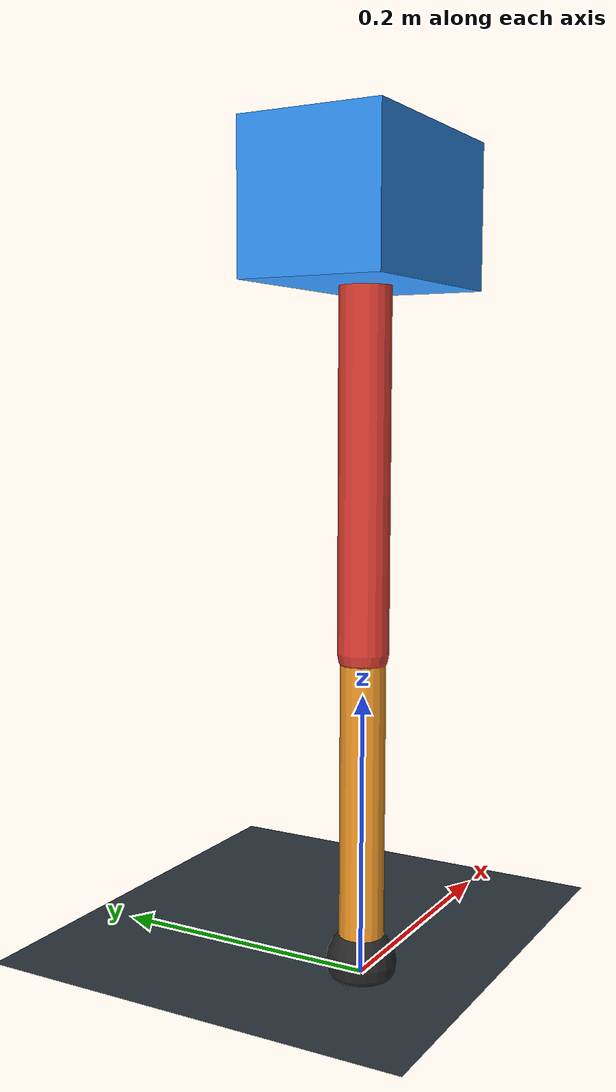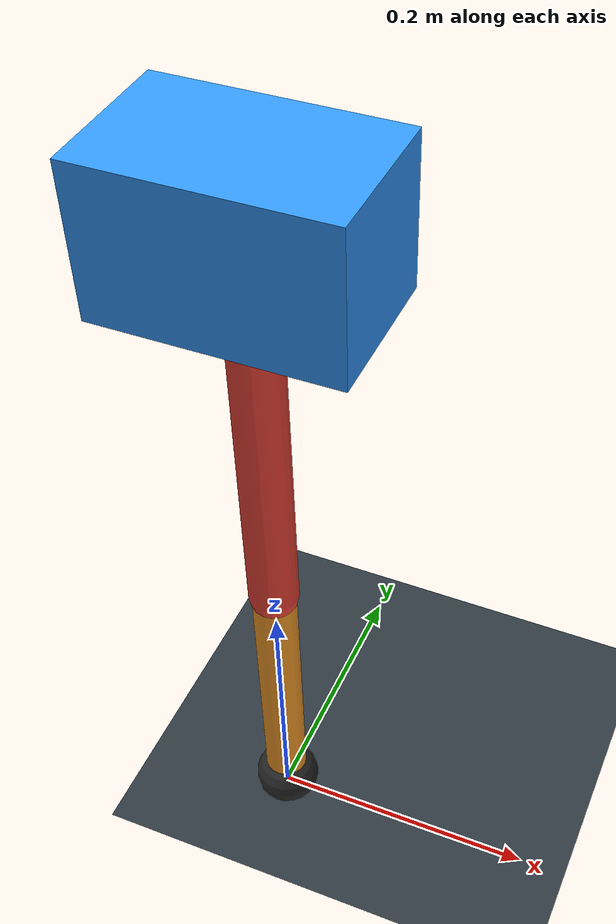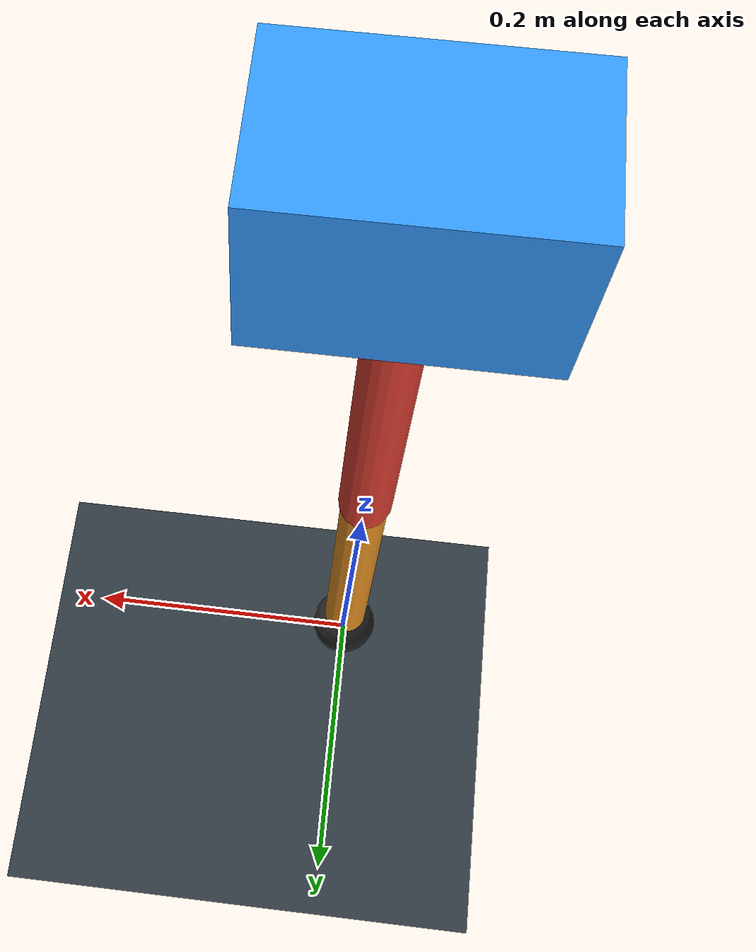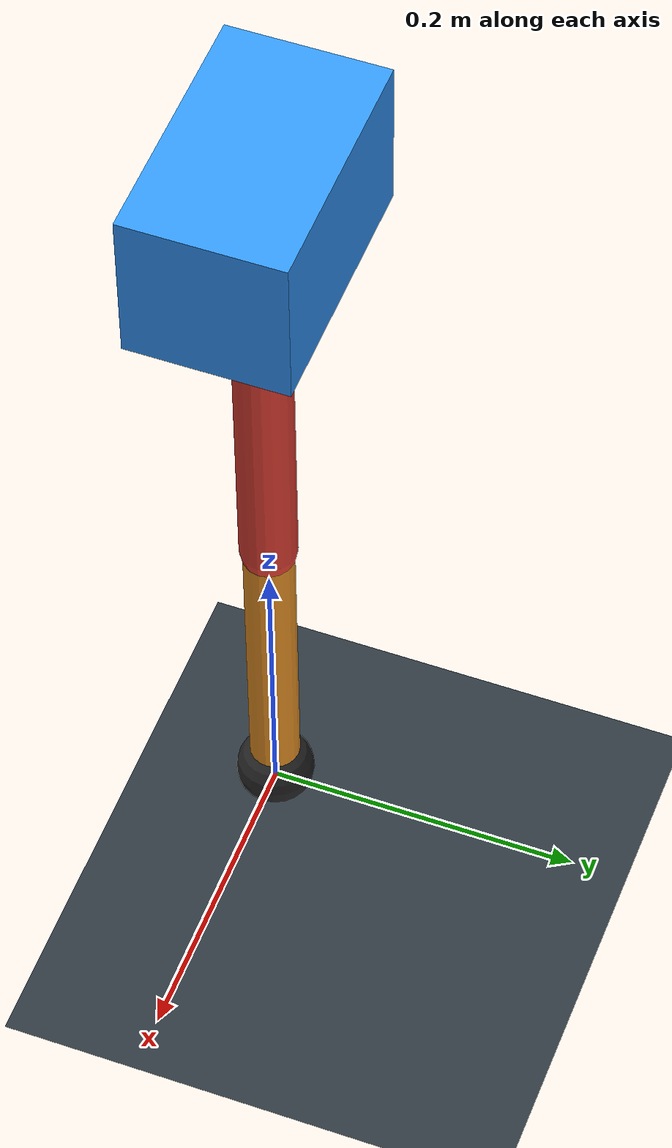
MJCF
<mujoco model="single_axis_two_bar">
  <compiler angle="radian" inertiafromgeom="true"/>
  <option timestep="0.001" integrator="implicitfast" gravity="0 0 -9.81"/>
  <default>
    <joint damping="0.08"/>
    <geom friction="1.2 0.01 0.0001" condim="3"/>
  </default>
  <worldbody>
    <geom name="floor" type="plane" size="5 5 0.1" rgba="0.18 0.22 0.25 1"/>
    <body name="carriage" pos="0 0 0.5271355246564701">
      <joint name="pole_slide" type="slide" axis="0 0 1"/>
      <geom name="payload" type="box" size="0.08 0.05 0.05" mass="3.297939484544673" rgba="0.2 0.6 1 1"/>
      <body name="thigh" pos="0 0 0">
        <joint name="hip" type="hinge" axis="0 1 0"/>
        <geom name="thigh_link" type="capsule" fromto="0 0 0 0 0 -0.29725995701472474" size="0.018" mass="0.21180164731676726" rgba="0.9 0.25 0.2 1"/>
        <body name="shank" pos="0 0 -0.29725995701472474">
          <joint name="knee" type="hinge" axis="0 1 0"/>
          <geom name="shank_link" type="capsule" fromto="0 0 0 0 0 -0.2204055323218424" size="0.016" mass="0.15704185418146585" rgba="0.95 0.6 0.15 1"/>
          <geom name="foot" type="sphere" pos="0 0 -0.2204055323218424" size="0.025" mass="0.03" rgba="0.15 0.15 0.15 1"/>
          <site name="toe" pos="0 0 -0.2204055323218424" size="0.008"/>
        </body>
      </body>
    </body>
  </worldbody>
  <actuator>
    <motor name="hip_motor" joint="hip" ctrlrange="-28.40772763552186 28.40772763552186"/>
    <motor name="knee_motor" joint="knee" ctrlrange="-159.05394155809583 159.05394155809583"/>
  </actuator>
</mujoco>
